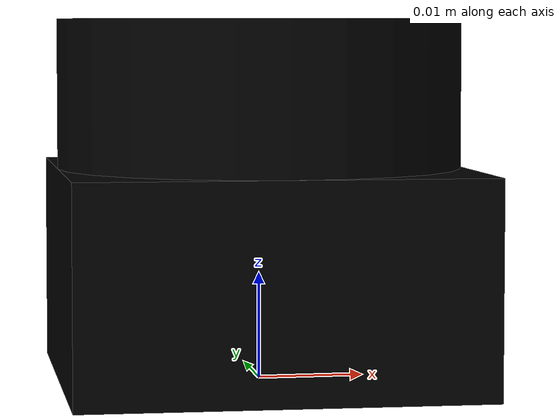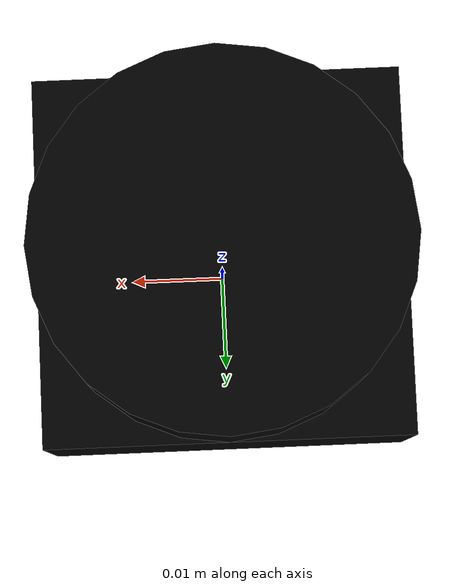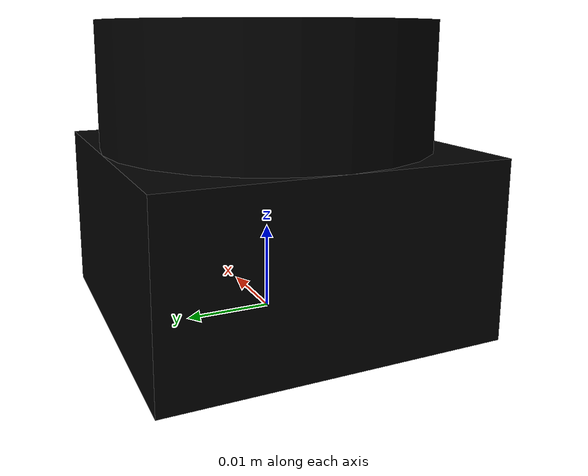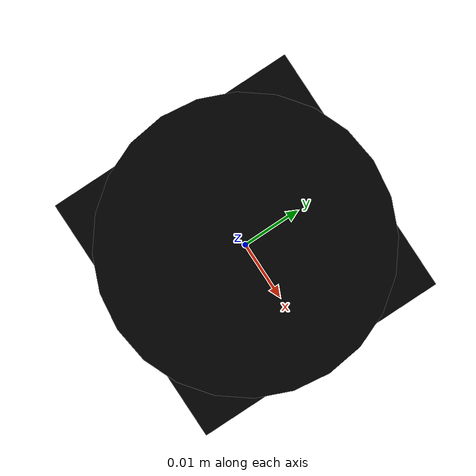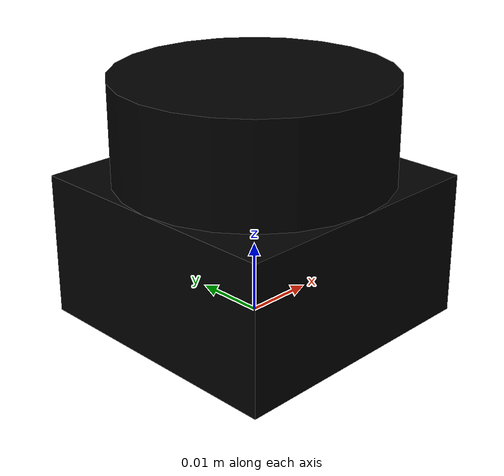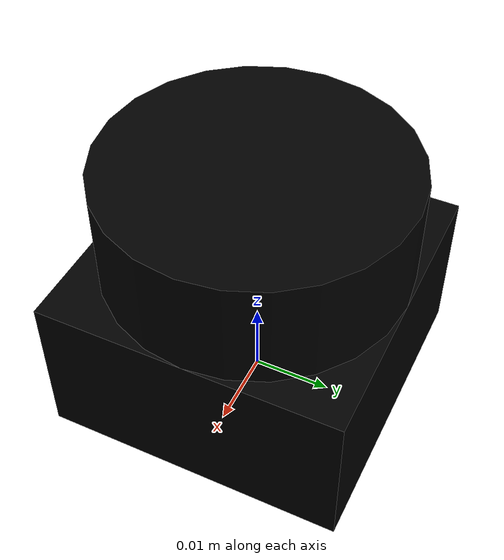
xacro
<?xml version="1.0"?>
<robot name="tmini_pro" xmlns:xacro="http://playerstage.sourceforge.net/gazebo/xmlschema/#xacro">

  <xacro:arg name="name" default=""/>
  <xacro:arg name="base_frame_id" default="base_link"/>
  <xacro:arg name="lidar_frame_id" default="base_laser"/>
  <xacro:arg name="reversed" default="false"/>

  <xacro:property name="_name" value="$(arg name)"/>
  <xacro:if value="${_name != ''}">
    <xacro:property name="tf_prefix" value="${_name}/"/>
  </xacro:if>
  <xacro:if value="${_name == ''}">
    <xacro:property name="tf_prefix" value=""/>
  </xacro:if>

  <xacro:if value="$(arg reversed)">
    <xacro:property name="roll" value="${pi}"/>
  </xacro:if>

  <xacro:unless value="$(arg reversed)">
    <xacro:property name="roll" value="0"/>
  </xacro:unless>

  <link name="${tf_prefix}$(arg base_frame_id)"/>

  <link name="${tf_prefix}body">
    <inertial>
      <origin xyz="0 0 0.5" rpy="0 0 0"/>
      <mass value="1"/>
      <inertia ixx="100"  ixy="0"  ixz="0" iyy="100" iyz="0" izz="100" />
    </inertial>

    <visual>
      <origin xyz="0 0 0.01" rpy="0 0 0" />
      <geometry>
        <box size="0.038 0.038 0.02" />
      </geometry>
      <material name="black"/>
    </visual>

    <visual>
      <origin xyz="0 0 0.027" rpy="0 0 0" />
      <geometry>
        <cylinder radius="0.019" length="0.014" />
      </geometry>
      <material name="black"/>
    </visual>

    <collision>
      <origin xyz="0 0 0.019" rpy="0 0 0"/>
      <geometry>
        <box size="0.038 0.038 0.034"/>
      </geometry>
    </collision>
  </link>

  <link name="${tf_prefix}$(arg lidar_frame_id)"/>

  <joint name="${tf_prefix}_joint_body" type="fixed">
      <origin xyz="0 0 0" rpy="0 0 0"/>
      <parent link="${tf_prefix}$(arg base_frame_id)"/>
      <child link="${tf_prefix}body"/>
  </joint>

  <joint name="${tf_prefix}_joint_lidar" type="fixed">
      <origin xyz="0 0 0.027" rpy="${roll} 0 0"/>
      <parent link="${tf_prefix}$(arg base_frame_id)"/>
      <child link="${tf_prefix}$(arg lidar_frame_id)"/>
  </joint>

  <material name="black">
      <color rgba="0.0 0.0 0.0 1.0"/>
  </material>

</robot>
